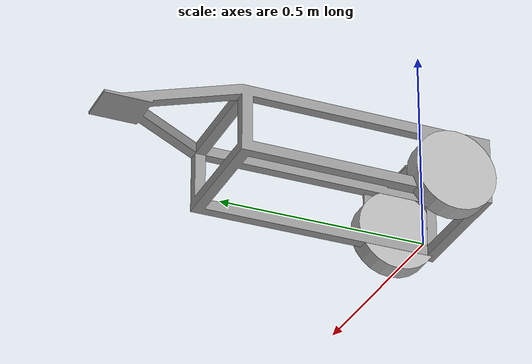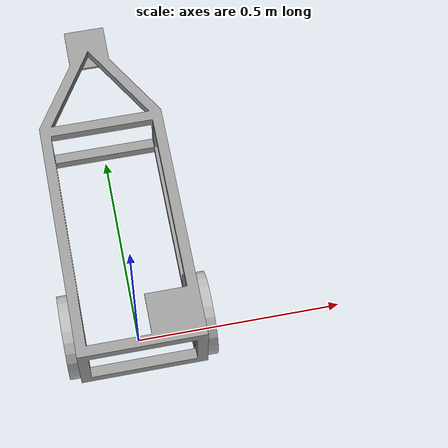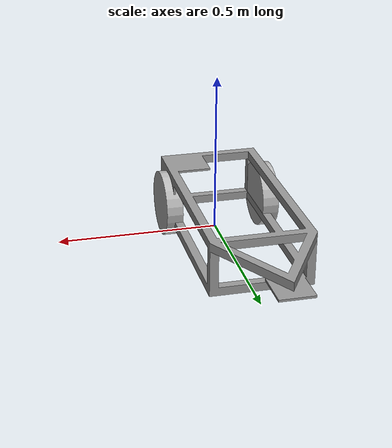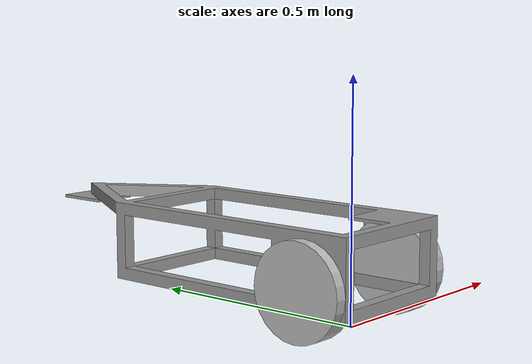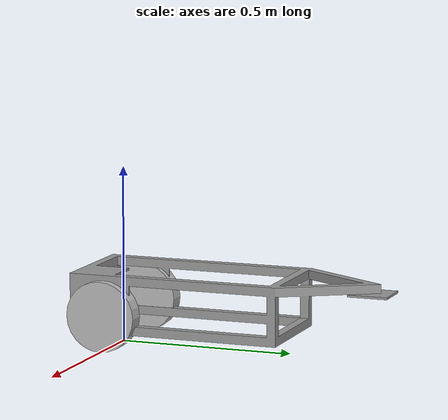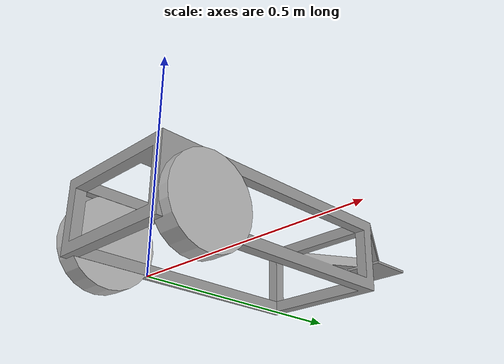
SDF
<?xml version='1.0'?>
<sdf version='1.7'>
  <model name='Lewis_Crawler'>

    <link name='chassis'>

      <pose>-0.1524 -0.1 0.0508 0 0 0</pose>

      <visual name='visual'>
        <pose>0 0 0 0 0 0</pose>

        <geometry>
          <mesh>
            <uri>/home/joe/git/lewis-crawler/Simulation/Meshes/LCFrame.dae</uri>
            <scale>1 1 1</scale>
          </mesh>
        </geometry>

        <material>
          <lighting>1</lighting>
          <script>
            <uri>file://media/materials/scripts/gazebo.material</uri>
            <name>Gazebo/Grey</name>
          </script>
          <shader type='pixel' />
        </material>

        <transparency>0</transparency>
        <cast_shadows>1</cast_shadows>
      </visual>

      <collision name='collision'>
        <laser_retro>0</laser_retro>
        <max_contacts>10</max_contacts>
        <pose>0 0 0 0 -0 0</pose>

        <geometry>
          <mesh>
            <uri>/home/joe/git/lewis-crawler/Simulation/Meshes/LCFrame.dae</uri>
            <scale>1 1 1</scale>
          </mesh>
        </geometry>

      </collision>

    </link>

    <link name="port_wheel">
      <pose>0.1524 0 0.1016 0 1.5707 0</pose>
      <collision name="collision">
        <geometry>
          <cylinder>
            <radius>.1</radius>
            <length>.05</length>
          </cylinder>
        </geometry>
      </collision>
      <visual name="visual">
        <geometry>
          <cylinder>
            <radius>.1</radius>
            <length>.05</length>
          </cylinder>
        </geometry>
      </visual>
    </link>

    <link name="starboard_wheel">
      <pose>-0.1524 0 0.1016 0 1.5707 0</pose>
      <collision name="collision">
        <geometry>
          <cylinder>
            <radius>.1</radius>
            <length>.05</length>
          </cylinder>
        </geometry>
      </collision>
      <visual name="visual">
        <geometry>
          <cylinder>
            <radius>.1</radius>
            <length>.05</length>
          </cylinder>
        </geometry>
      </visual>
    </link>

    <joint type="port_wheel" name="port_wheel_axle">
      <pose>0 0 -0.03 0 0 0</pose>
      <child>left_wheel</child>
      <parent>chassis</parent>
      <axis>
        <xyz>0 1 0</xyz>
      </axis>
    </joint>

    <joint type="starboard_wheel" name="starboard_wheel_axle">
      <pose>0 0 0.03 0 0 0</pose>
      <child>right_wheel</child>
      <parent>chassis</parent>
      <axis>
        <xyz>0 1 0</xyz>
      </axis>
    </joint>

    <static>0</static>
    <allow_auto_disable>1</allow_auto_disable>
  </model>
</sdf>
